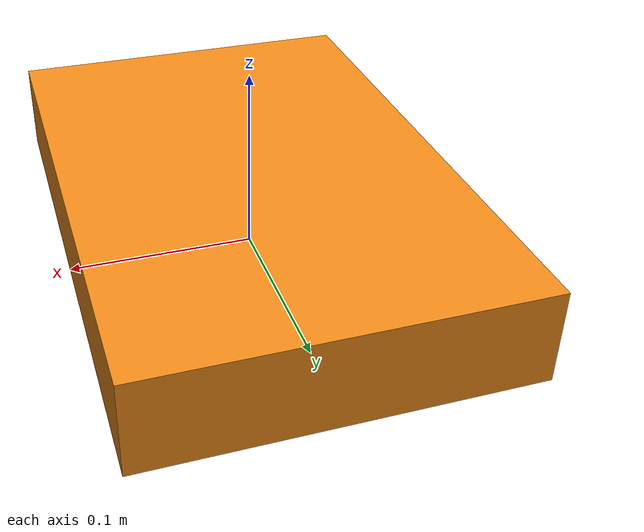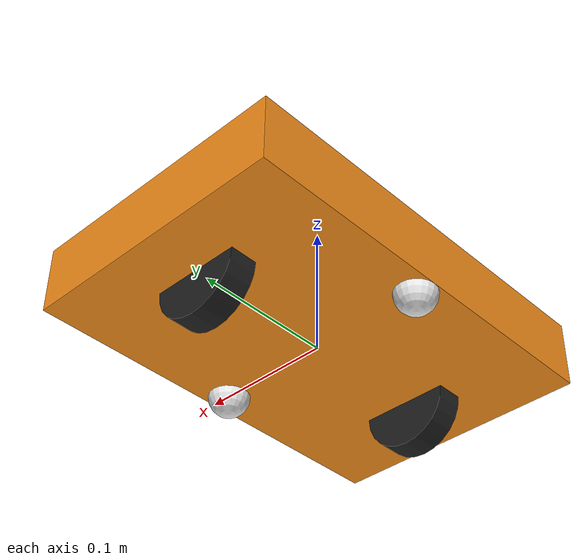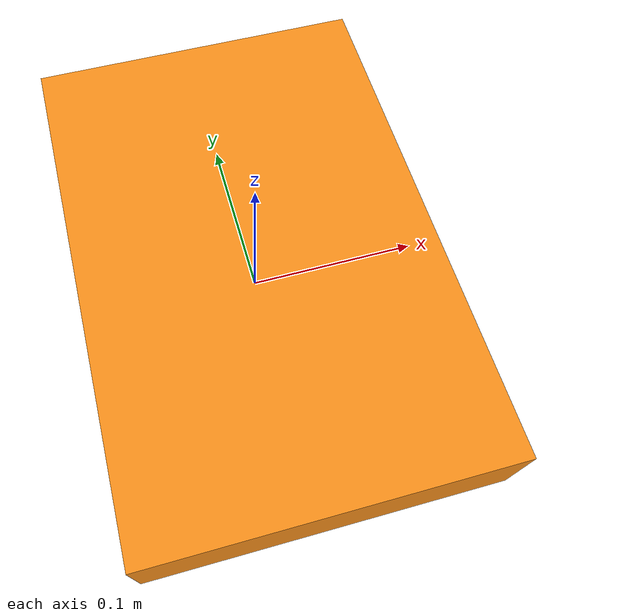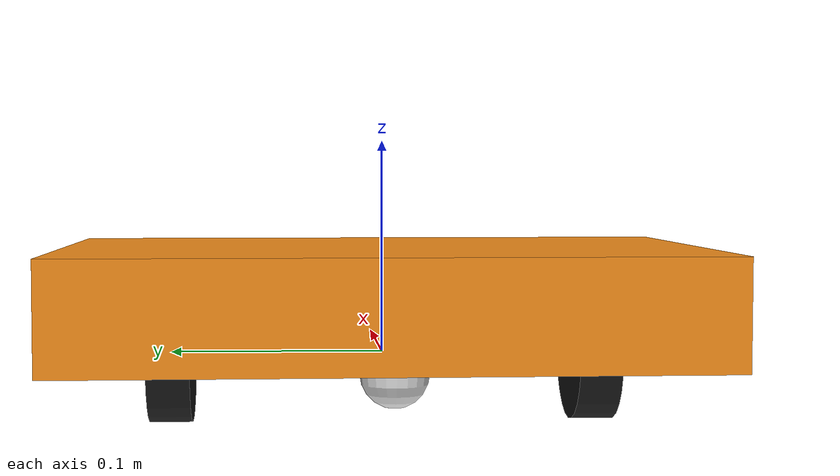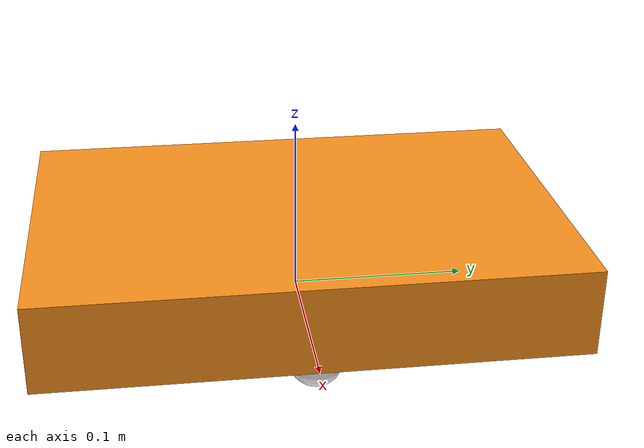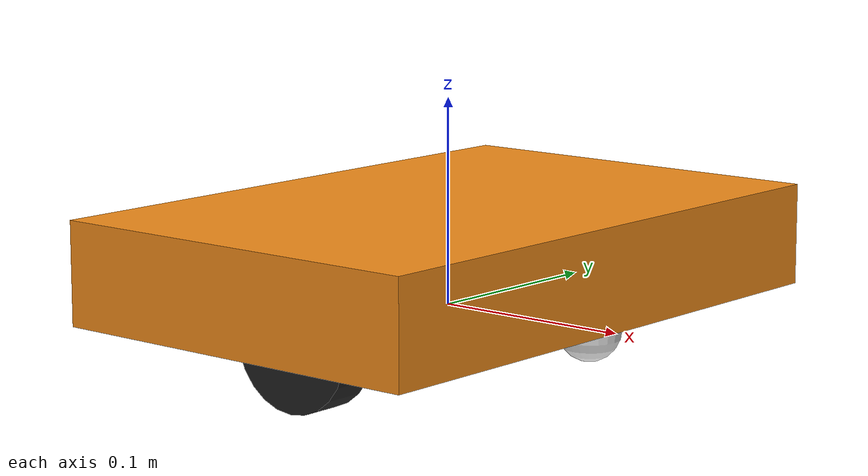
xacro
<?xml version="1.0"?>
<robot xmlns:xacro="http://www.ros.org/wiki/xacro">

  <!-- Constants for robot dimensions -->
  <xacro:property name="PI" value="3.1415926535897931"/>
  <xacro:property name="base_mass" value="1.0" /> <!-- arbitrary value for base mass -->
  <xacro:property name="base_width" value="0.2" />
  <xacro:property name="base_length" value="0.3" />
  <xacro:property name="base_height" value="0.05" />
  <xacro:property name="wheel_mass" value="0.3" /> <!-- arbitrary value for wheel mass -->
  <xacro:property name="wheel_len" value="0.02" />
  <xacro:property name="wheel_radius" value="0.033" />
  <xacro:property name="caster_wheel_mass" value="0.1" /> <!-- arbitrary value for caster wheel mass -->
  <xacro:property name="caster_wheel_radius" value="0.015" />
  <xacro:property name="z_offset" value="0" /> <!-- Space btw top of beam and the each joint -->

  <!-- Base Link -->
  <link name="base_link">
    <collision>
      <origin xyz="0 0 0" rpy="0 0 0"/>
      <geometry>
        <box size="${base_width} ${base_length} ${base_height}"/>
      </geometry>
    </collision>

    <visual>
      <origin xyz="0 0 ${base_height/2}" rpy="0 0 0"/>
      <geometry>
        <box size="${base_width} ${base_length} ${base_height}"/>
      </geometry>
      <material name="orange"/>
    </visual>

    <inertial>
      <origin xyz="0 0 0" rpy="0 0 0"/>
      <mass value="${base_mass}"/>
      <inertia
        ixx="${base_mass / 12.0 * (base_length*base_length + base_height*base_height)}" ixy="0.0" ixz="0.0"
        iyy="${base_mass / 12.0 * (base_height*base_height + base_width*base_width)}" iyz="0.0"
        izz="${base_mass / 12.0 * (base_width*base_width + base_length*base_length)}"/>
      </inertial>
    </link>

    <joint name="left_wheel_joint" type="continuous">
      <parent link="base_link"/>
      <child link="left_wheel"/>
      <origin xyz="0 -${base_width/2} ${z_offset}" rpy="0 0 0"/>
      <axis xyz="0 1 0"/>
      <dynamics damping="0.2"/>
      <limit effort="100" velocity="1.0"/>
    </joint>

    <!-- left wheel Link -->
    <link name="left_wheel">
      <collision>
        <origin xyz="0 0 0" rpy="${PI/2} 0 0"/>
        <geometry>
          <cylinder length="${wheel_len}" radius="${wheel_radius}"/>
        </geometry>
      </collision>

      <visual>
        <origin xyz="0 0 0" rpy="${PI/2} 0 0"/>
        <geometry>
          <cylinder length="${wheel_len}" radius="${wheel_radius}"/>
        </geometry>
        <material name="black"/>
      </visual>

      <inertial>
        <origin xyz="0 0 0" rpy="${PI/2} 0 0"/>
        <mass value="${wheel_mass}"/>
        <inertia
          ixx="${wheel_mass / 12.0 * (3*wheel_radius*wheel_radius + wheel_len*wheel_len)}" ixy="0.0" ixz="0.0"
          iyy="${wheel_mass / 12.0 * (3*wheel_radius*wheel_radius + wheel_len*wheel_len)}" iyz="0.0"
          izz="${wheel_mass / 2.0 * wheel_radius*wheel_radius}"/>
        </inertial>
      </link>

    <joint name="right_wheel_joint" type="continuous">
      <parent link="base_link"/>
      <child link="right_wheel"/>
      <origin xyz="0 ${base_width/2} ${z_offset}" rpy="0 0 0"/>
      <axis xyz="0 1 0"/>
      <dynamics damping="0.2"/>
      <limit effort="100" velocity="1.0"/>
    </joint>

    <!-- right wheel Link -->
    <link name="right_wheel">
      <collision>
        <origin xyz="0 0 0" rpy="${PI/2} 0 0"/>
        <geometry>
          <cylinder length="${wheel_len}" radius="${wheel_radius}"/>
        </geometry>
      </collision>

      <visual>
        <origin xyz="0 0 0" rpy="${PI/2} 0 0"/>
        <geometry>
          <cylinder length="${wheel_len}" radius="${wheel_radius}"/>
        </geometry>
        <material name="black"/>
      </visual>

      <inertial>
        <origin xyz="0 0 0" rpy="${PI/2} 0 0"/>
        <mass value="${wheel_mass}"/>
        <inertia
          ixx="${wheel_mass / 12.0 * (3*wheel_radius*wheel_radius + wheel_len*wheel_len)}" ixy="0.0" ixz="0.0"
          iyy="${wheel_mass / 12.0 * (3*wheel_radius*wheel_radius + wheel_len*wheel_len)}" iyz="0.0"
          izz="${wheel_mass / 2.0 * wheel_radius*wheel_radius}"/>
        </inertial>
      </link>

    <joint name="caster_frontal_wheel_joint" type="fixed">
      <parent link="base_link"/>
      <child link="caster_frontal_wheel"/>
      <origin xyz="${base_width/2 - caster_wheel_radius} 0 ${z_offset}" rpy="0 0 0"/>
    </joint>

    <!-- caster frontal wheel Link -->
    <link name="caster_frontal_wheel">
      <collision>
        <origin xyz="0 0 0" rpy="0 0 0"/>
        <geometry>
          <sphere radius="${caster_wheel_radius}"/>
        </geometry>
      </collision>

      <visual>
        <origin xyz="0 0 0" rpy="0 0 0"/>
        <geometry>
          <sphere radius="${caster_wheel_radius}"/>
        </geometry>
        <material name="white"/>
      </visual>

      <inertial>
        <origin xyz="0 0 0" rpy="0 0 0"/>
        <mass value="${caster_wheel_mass}"/>
        <inertia
          ixx="${caster_wheel_mass * 0.4 * (caster_wheel_radius * caster_wheel_radius)}" ixy="0.0" ixz="0.0"
          iyy="${caster_wheel_mass * 0.4 * (caster_wheel_radius * caster_wheel_radius)}" iyz="0.0"
          izz="${caster_wheel_mass * 0.4 * (caster_wheel_radius * caster_wheel_radius)}"/>
        </inertial>
      </link>

    <joint name="caster_rear_wheel_joint" type="fixed">
      <parent link="base_link"/>
      <child link="caster_rear_wheel"/>
      <origin xyz="${-base_width/2 + caster_wheel_radius} 0 ${z_offset}" rpy="0 0 0"/>
    </joint>

    <!-- caster rear wheel Link -->
    <link name="caster_rear_wheel">
      <collision>
        <origin xyz="0 0 0" rpy="0 0 0"/>
        <geometry>
          <sphere radius="${caster_wheel_radius}"/>
        </geometry>
      </collision>

      <visual>
        <origin xyz="0 0 0" rpy="0 0 0"/>
        <geometry>
          <sphere radius="${caster_wheel_radius}"/>
        </geometry>
        <material name="white"/>
      </visual>

      <inertial>
        <origin xyz="0 0 0" rpy="0 0 0"/>
        <mass value="${caster_wheel_mass}"/>
        <inertia
          ixx="${caster_wheel_mass * 0.4 * (caster_wheel_radius * caster_wheel_radius)}" ixy="0.0" ixz="0.0"
          iyy="${caster_wheel_mass * 0.4 * (caster_wheel_radius * caster_wheel_radius)}" iyz="0.0"
          izz="${caster_wheel_mass * 0.4 * (caster_wheel_radius * caster_wheel_radius)}"/>
        </inertial>
      </link>

</robot>
